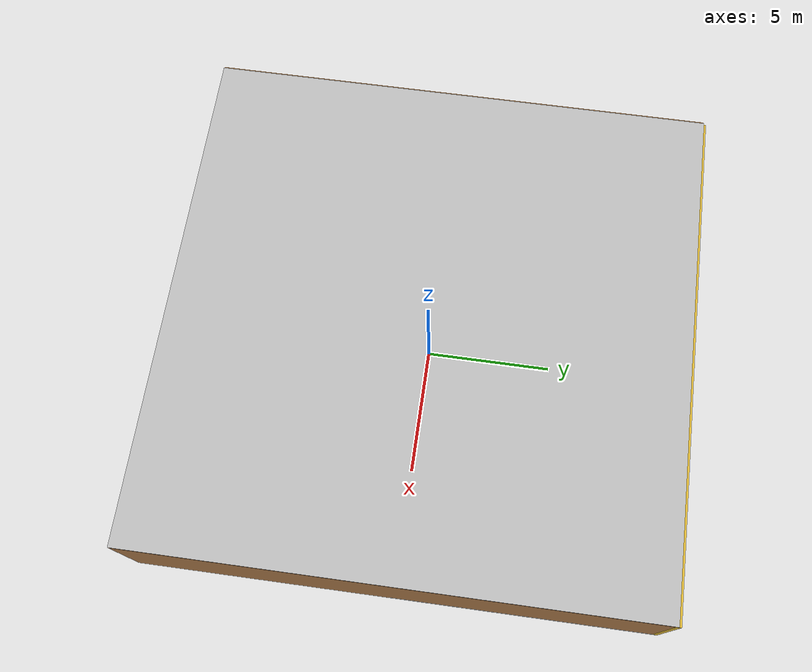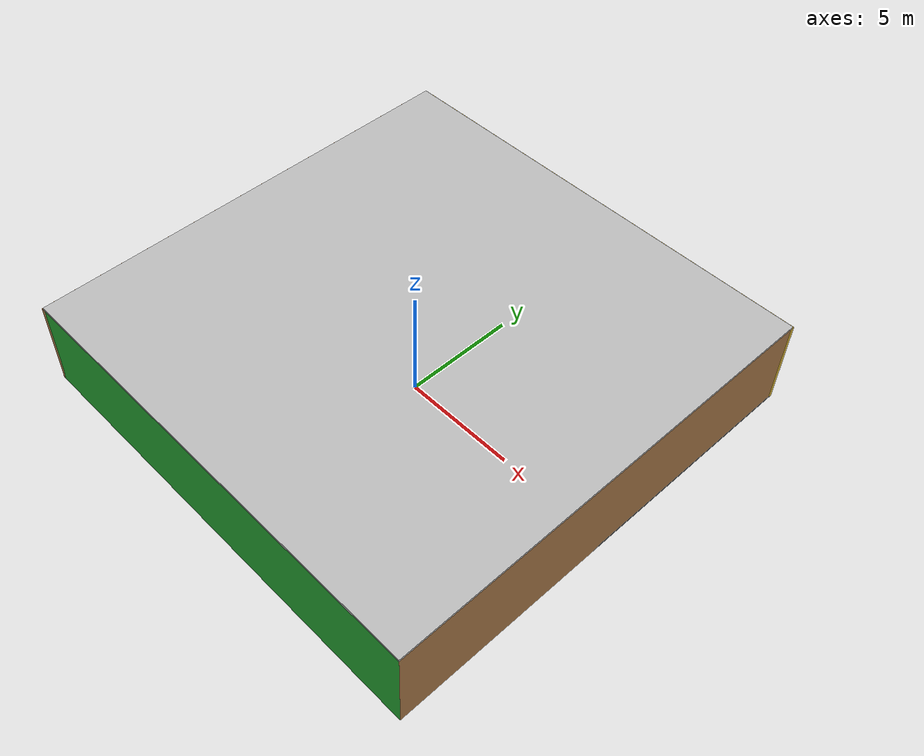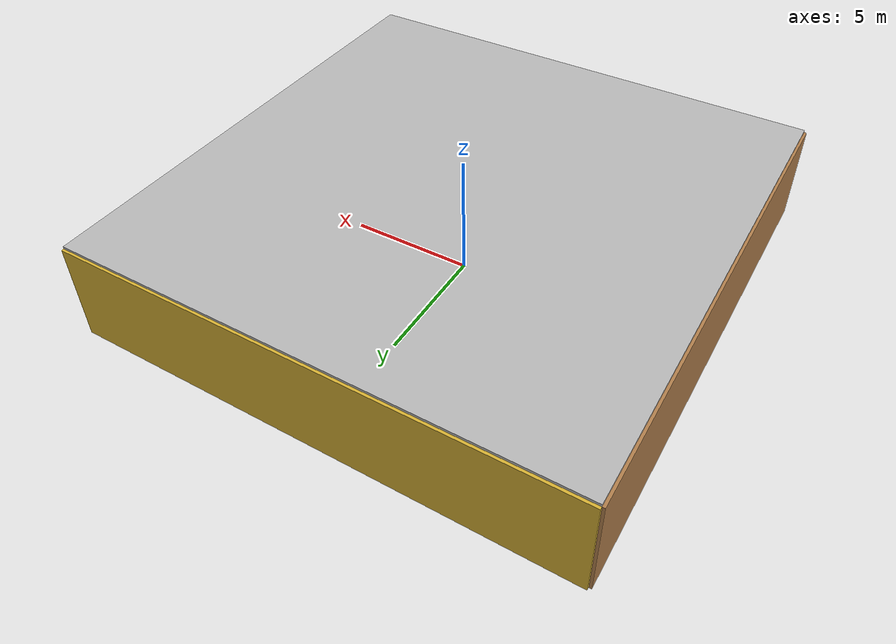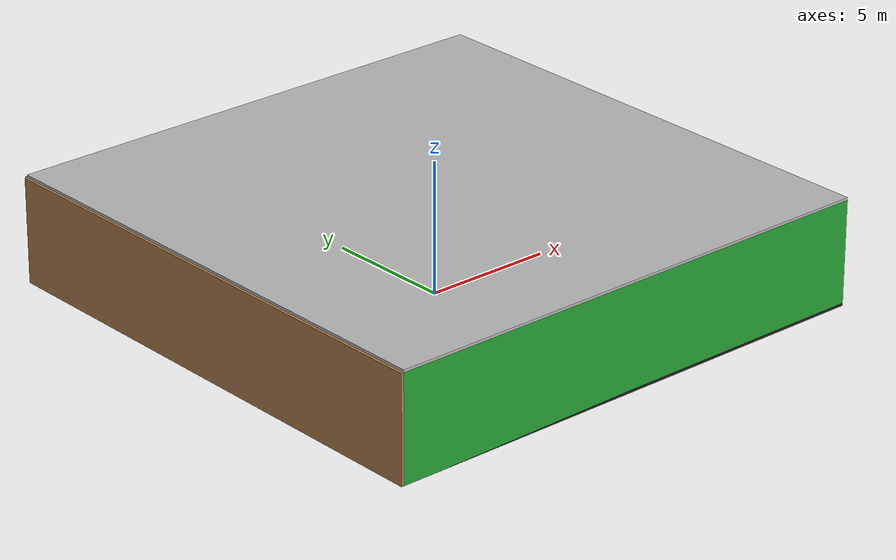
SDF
<sdf version="1.4">
 <world name="default">
  <physics type="ode">
   <max_step_size>0.001</max_step_size>
   <real_time_factor>1</real_time_factor>
   <real_time_update_rate>1000</real_time_update_rate>
   <gravity>0 0 -9.8</gravity>
  </physics>
  <scene><ambient>0.4 0.4 0.4 1</ambient><background>0.7 0.7 0.7 1</background><shadows>1</shadows></scene>
  <model name="Surrounding">
   <static>1</static>
   <link name="Ceiling">
    <collision name="Ceiling_Collision"><geometry><box><size>20 20 0.1</size></box></geometry></collision>
    <visual name="Ceiling_Visual">
     <geometry><box><size>20 20 0.1</size></box></geometry>
     <material>
      <script><uri>file://media/materials/scripts/gazebo.material</uri><name>Gazebo/PioneerBody</name></script>
     </material>
    </visual>
    <pose>0 0 4.05 0 0 0</pose>
   </link>
   <link name="Wall_South">
    <collision name="Wall_South_Collision">
     <geometry><box><size>20 0 4</size></box></geometry>
     <pose>0 0 2 0 -0 0</pose>
    </collision>
    <visual name="Wall_South_Visual">
     <pose>0 0 2 0 -0 0</pose>
     <geometry><box><size>20 0 4</size></box></geometry>
     <material>
      <script><uri>file://media/materials/scripts/gazebo.material</uri><name>Gazebo/GreenGlow</name></script>
     </material>
    </visual>
    <velocity_decay><linear>0</linear><angular>0</angular></velocity_decay>
    <pose>0 -10 0 0 -0 0</pose>
   </link>
   <link name="Wall_East">
    <collision name="Wall_21_Collision">
     <geometry><box><size>20 0 4</size></box></geometry>
     <pose>0 0 2 0 -0 0</pose>
    </collision>
    <visual name="Wall_21_Visual">
     <pose>0 0 2 0 -0 0</pose>
     <geometry><box><size>20 0 4</size></box></geometry>
     <material>
      <script><uri>file://media/materials/scripts/gazebo.material</uri><name>Gazebo/Wood</name></script>
     </material>
    </visual>
    <velocity_decay><linear>0</linear><angular>0</angular></velocity_decay>
    <pose>10 0 0 0 -0 1.5708</pose>
   </link>
   <link name="Wall_North">
    <collision name="Wall_22_Collision">
     <geometry><box><size>20 0.2 4</size></box></geometry>
     <pose>0 0 2 0 -0 0</pose>
    </collision>
    <visual name="Wall_22_Visual">
     <pose>0 0 2 0 -0 0</pose>
     <geometry><box><size>20 0.2 4</size></box></geometry>
     <material>
      <script><uri>file://media/materials/scripts/gazebo.material</uri><name>Gazebo/Gold</name></script>
     </material>
    </visual>
    <velocity_decay><linear>0</linear><angular>0</angular></velocity_decay>
    <pose>0 10 0 0 -0 0</pose>
   </link>
   <link name="Wall_West">
    <collision name="Wall_23_Collision">
     <geometry><box><size>20 0.2 4</size></box></geometry>
     <pose>0 0 2 0 -0 0</pose>
    </collision>
    <visual name="Wall_23_Visual">
     <pose>0 0 2 0 -0 0</pose>
     <geometry><box><size>20 0.2 4</size></box></geometry>
     <material>
      <script><uri>file://media/materials/scripts/gazebo.material</uri><name>Gazebo/WoodFloor</name></script>
     </material>
    </visual>
    <velocity_decay><linear>0</linear><angular>0</angular></velocity_decay>
    <pose>-10 0 0 0 0 -1.5708</pose>
   </link>
   <link name="Ground_link">
    <collision name="collision">
     <pose>0 0 .05 0 -0 0</pose>
     <geometry><box><size>20 20 0.1</size></box></geometry>
    </collision>
    <visual name="visual">
     <pose>0 0 .05 0 -0 0</pose>
     <geometry><box><size>20 20 0.1</size></box></geometry>
     <material>
      <script><uri>file://media/materials/scripts/gazebo.material</uri><name>Gazebo/FlatBlack</name></script>
     </material>
    </visual>
   </link>
   <static>1</static>
  </model>
  <spherical_coordinates>
   <surface_model>EARTH_WGS84</surface_model>
   <latitude_deg>0</latitude_deg>
   <longitude_deg>0</longitude_deg>
   <elevation>0</elevation>
   <heading_deg>0</heading_deg>
  </spherical_coordinates>
  <light name="lightball_0" type="diffuse">
   <diffuse>0.8 0.8 0.8 1</diffuse>
   <specular>0.2 0.2 0.2 1</specular>
   <attenuation>
    <range>100</range>
    <constant>0.7</constant>
    <linear>0.01</linear>
    <quadratic>0.001</quadratic>
   </attenuation>
   <direction>-0.5 0.1 -0.9</direction>
   <pose>-6.16420361409 -7.71073086744 2.76545476499 0 0 0</pose>
  </light>
  <light name="lightball_1" type="diffuse">
   <diffuse>0.8 0.8 0.8 1</diffuse>
   <specular>0.2 0.2 0.2 1</specular>
   <attenuation>
    <range>100</range>
    <constant>0.7</constant>
    <linear>0.01</linear>
    <quadratic>0.001</quadratic>
   </attenuation>
   <direction>-0.5 0.1 -0.9</direction>
   <pose>-7.45903674343 0.763800618137 3.03914215844 0 0 0</pose>
  </light>
  <light name="lightball_2" type="diffuse">
   <diffuse>0.8 0.8 0.8 1</diffuse>
   <specular>0.2 0.2 0.2 1</specular>
   <attenuation>
    <range>100</range>
    <constant>0.7</constant>
    <linear>0.01</linear>
    <quadratic>0.001</quadratic>
   </attenuation>
   <direction>-0.5 0.1 -0.9</direction>
   <pose>-7.31878498913 -9.75349066168 0.901825708938 0 0 0</pose>
  </light>
  <light name="lightball_3" type="diffuse">
   <diffuse>0.8 0.8 0.8 1</diffuse>
   <specular>0.2 0.2 0.2 1</specular>
   <attenuation>
    <range>100</range>
    <constant>0.7</constant>
    <linear>0.01</linear>
    <quadratic>0.001</quadratic>
   </attenuation>
   <direction>-0.5 0.1 -0.9</direction>
   <pose>-2.14652138479 -3.8483305086 2.05117636325 0 0 0</pose>
  </light>
  <light name="lightball_4" type="diffuse">
   <diffuse>0.8 0.8 0.8 1</diffuse>
   <specular>0.2 0.2 0.2 1</specular>
   <attenuation>
    <range>100</range>
    <constant>0.7</constant>
    <linear>0.01</linear>
    <quadratic>0.001</quadratic>
   </attenuation>
   <direction>-0.5 0.1 -0.9</direction>
   <pose>-7.27053627324 0.781822855813 1.33387050482 0 0 0</pose>
  </light>
  <light name="lightball_5" type="diffuse">
   <diffuse>0.8 0.8 0.8 1</diffuse>
   <specular>0.2 0.2 0.2 1</specular>
   <attenuation>
    <range>100</range>
    <constant>0.7</constant>
    <linear>0.01</linear>
    <quadratic>0.001</quadratic>
   </attenuation>
   <direction>-0.5 0.1 -0.9</direction>
   <pose>5.29582569879 9.66402424412 2.24079629587 0 0 0</pose>
  </light>
  <light name="lightball_6" type="diffuse">
   <diffuse>0.8 0.8 0.8 1</diffuse>
   <specular>0.2 0.2 0.2 1</specular>
   <attenuation>
    <range>100</range>
    <constant>0.7</constant>
    <linear>0.01</linear>
    <quadratic>0.001</quadratic>
   </attenuation>
   <direction>-0.5 0.1 -0.9</direction>
   <pose>-6.43431082046 5.70055898425 1.31828278866 0 0 0</pose>
  </light>
  <light name="lightball_7" type="diffuse">
   <diffuse>0.8 0.8 0.8 1</diffuse>
   <specular>0.2 0.2 0.2 1</specular>
   <attenuation>
    <range>100</range>
    <constant>0.7</constant>
    <linear>0.01</linear>
    <quadratic>0.001</quadratic>
   </attenuation>
   <direction>-0.5 0.1 -0.9</direction>
   <pose>-0.773838763643 -6.46472856565 1.79346347208 0 0 0</pose>
  </light>
  <light name="lightball_8" type="diffuse">
   <diffuse>0.8 0.8 0.8 1</diffuse>
   <specular>0.2 0.2 0.2 1</specular>
   <attenuation>
    <range>100</range>
    <constant>0.7</constant>
    <linear>0.01</linear>
    <quadratic>0.001</quadratic>
   </attenuation>
   <direction>-0.5 0.1 -0.9</direction>
   <pose>-7.70030108176 -6.60433235698 3.60634062824 0 0 0</pose>
  </light>
  <light name="lightball_9" type="diffuse">
   <diffuse>0.8 0.8 0.8 1</diffuse>
   <specular>0.2 0.2 0.2 1</specular>
   <attenuation>
    <range>100</range>
    <constant>0.7</constant>
    <linear>0.01</linear>
    <quadratic>0.001</quadratic>
   </attenuation>
   <direction>-0.5 0.1 -0.9</direction>
   <pose>5.00776364689 -6.46410978115 3.82210871848 0 0 0</pose>
  </light>
  <light name="lightball_10" type="diffuse">
   <diffuse>0.8 0.8 0.8 1</diffuse>
   <specular>0.2 0.2 0.2 1</specular>
   <attenuation>
    <range>100</range>
    <constant>0.7</constant>
    <linear>0.01</linear>
    <quadratic>0.001</quadratic>
   </attenuation>
   <direction>-0.5 0.1 -0.9</direction>
   <pose>-6.80054311496 -5.33611543921 1.93366703105 0 0 0</pose>
  </light>
  <light name="lightball_11" type="diffuse">
   <diffuse>0.8 0.8 0.8 1</diffuse>
   <specular>0.2 0.2 0.2 1</specular>
   <attenuation>
    <range>100</range>
    <constant>0.7</constant>
    <linear>0.01</linear>
    <quadratic>0.001</quadratic>
   </attenuation>
   <direction>-0.5 0.1 -0.9</direction>
   <pose>-0.155394269766 2.72551920815 3.65563776607 0 0 0</pose>
  </light>
  <light name="lightball_12" type="diffuse">
   <diffuse>0.8 0.8 0.8 1</diffuse>
   <specular>0.2 0.2 0.2 1</specular>
   <attenuation>
    <range>100</range>
    <constant>0.7</constant>
    <linear>0.01</linear>
    <quadratic>0.001</quadratic>
   </attenuation>
   <direction>-0.5 0.1 -0.9</direction>
   <pose>-7.25516125674 -3.63651935084 3.0038589 0 0 0</pose>
  </light>
  <include>
   <uri>model://robocup_3Dsim_goal</uri>
   <pose>-7.39606857068 -6.37208836632 0 0 0 0.211565455673</pose>
  </include>
  <include>
   <uri>model://robocup_3Dsim_goal</uri>
   <pose>-6.50781400813 0.402374509224 0 0 0 2.54422035585</pose>
  </include>
  <include>
   <uri>model://robocup_3Dsim_goal</uri>
   <pose>-5.32866605346 -1.97769654895 0 0 0 0.939201585617</pose>
  </include>
  <include><uri>model://cabinet</uri><pose>-5.00707980221 8.63238853787 0 0 0 2.18896101349</pose></include>
  <include>
   <uri>model://robocup_3Dsim_goal</uri>
   <pose>-0.334665020483 3.34864959529 0 0 0 1.6589148749</pose>
  </include>
  <include>
   <uri>model://robocup_3Dsim_goal</uri>
   <pose>0.75172932891 6.66867061513 0 0 0 0.506567669646</pose>
  </include>
  <include>
   <uri>model://textured_shapes</uri>
   <pose>5.29175797215 -6.59805366028 0 0 0 1.56625792907</pose>
  </include>
  <include>
   <uri>model://robocup_3Dsim_goal</uri>
   <pose>4.04132861602 -1.89281499179 0 0 0 0.89121928244</pose>
  </include>
  <include><uri>model://cabinet</uri><pose>4.30497573793 8.08795356098 0 0 0 1.55701821426</pose></include>
 </world>
</sdf>

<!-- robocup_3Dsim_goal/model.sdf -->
<sdf version="1.5">
  <model name="robocup_3d_goal">
    <static>true</static>
    <link name="left_post">
      <pose>0 1.05 0.45 0 0 0</pose>
      <collision name="collision">
        <geometry>
          <cylinder>
            <radius>0.05</radius>
            <length>0.9</length>
          </cylinder>
        </geometry>
      </collision>
      <visual name="visual">
        <geometry>
          <cylinder>
            <radius>0.05</radius>
            <length>0.9</length>
          </cylinder>
        </geometry>
        <material>
          <script>
            <uri>file://media/materials/scripts/gazebo.material</uri>
            <name>Gazebo/ZincYellow</name>
          </script>
        </material>
      </visual>
    </link>
    <link name="left_support_horiz_lower">
      <pose>0.30 1.05 0.01 0 0 0</pose>
      <collision name="collision">
        <geometry>
          <box>
            <size>0.50 0.02 0.02</size>
          </box>
        </geometry>
      </collision>
      <visual name="visual">
        <geometry>
          <box>
            <size>0.50 0.02 0.02</size>
          </box>
        </geometry>
        <material>
          <script>
            <uri>file://media/materials/scripts/gazebo.material</uri>
            <name>Gazebo/White</name>
          </script>
        </material>
      </visual>
    </link>
    <link name="left_support_horiz_upper">
      <pose>0.30 1.05 0.79 0 0 0</pose>
      <collision name="collision">
        <geometry>
          <box>
            <size>0.50 0.02 0.02</size>
          </box>
        </geometry>
      </collision>
      <visual name="visual">
        <geometry>
          <box>
            <size>0.50 0.02 0.02</size>
          </box>
        </geometry>
        <material>
          <script>
            <uri>file://media/materials/scripts/gazebo.material</uri>
            <name>Gazebo/White</name>
          </script>
        </material>
      </visual>
    </link>
    <link name="left_support_vertical">
      <pose>0.56 1.05 0.4 0 1.5708 0</pose>
      <collision name="collision">
        <geometry>
          <box>
            <size>0.80 0.02 0.02</size>
          </box>
        </geometry>
      </collision>
      <visual name="visual">
        <geometry>
          <box>
            <size>0.80 0.02 0.02</size>
          </box>
        </geometry>
        <material>
          <script>
            <uri>file://media/materials/scripts/gazebo.material</uri>
            <name>Gazebo/White</name>
          </script>
        </material>
      </visual>
    </link>
    <link name="right_support_horiz_lower">
      <pose>0.30 -1.05 0.01 0 0 0</pose>
      <collision name="collision">
        <geometry>
          <box>
            <size>0.50 0.02 0.02</size>
          </box>
        </geometry>
      </collision>
      <visual name="visual">
        <geometry>
          <box>
            <size>0.50 0.02 0.02</size>
          </box>
        </geometry>
        <material>
          <script>
            <uri>file://media/materials/scripts/gazebo.material</uri>
            <name>Gazebo/White</name>
          </script>
        </material>
      </visual>
    </link>
    <link name="right_support_horiz_upper">
      <pose>0.30 -1.05 0.79 0 0 0</pose>
      <collision name="collision">
        <geometry>
          <box>
            <size>0.50 0.02 0.02</size>
          </box>
        </geometry>
      </collision>
      <visual name="visual">
        <geometry>
          <box>
            <size>0.50 0.02 0.02</size>
          </box>
        </geometry>
        <material>
          <script>
            <uri>file://media/materials/scripts/gazebo.material</uri>
            <name>Gazebo/White</name>
          </script>
        </material>
      </visual>
    </link>
    <link name="right_support_vertical">
      <pose>0.56 -1.05 0.4 0 1.5708 0</pose>
      <collision name="collision">
        <geometry>
          <box>
            <size>0.80 0.02 0.02</size>
          </box>
        </geometry>
      </collision>
      <visual name="visual">
        <geometry>
          <box>
            <size>0.80 0.02 0.02</size>
          </box>
        </geometry>
        <material>
          <script>
            <uri>file://media/materials/scripts/gazebo.material</uri>
            <name>Gazebo/White</name>
          </script>
        </material>
      </visual>
    </link>
    <link name="center_support_horiz_lower">
      <pose>0.56 0 0.01 0 1.5708 0</pose>
      <collision name="collision">
        <geometry>
          <box>
            <size>0.02 2.08 0.02</size>
          </box>
        </geometry>
      </collision>
      <visual name="visual">
        <geometry>
          <box>
            <size>0.02 2.08 0.02</size>
          </box>
        </geometry>
        <material>
          <script>
            <uri>file://media/materials/scripts/gazebo.material</uri>
            <name>Gazebo/White</name>
          </script>
        </material>
      </visual>
    </link>
    <link name="center_support_horiz_upper">
      <pose>0.56 0 0.79 0 1.5708 0</pose>
      <collision name="collision">
        <geometry>
          <box>
            <size>0.02 2.08 0.02</size>
          </box>
        </geometry>
      </collision>
      <visual name="visual">
        <geometry>
          <box>
            <size>0.02 2.08 0.02</size>
          </box>
        </geometry>
        <material>
          <script>
            <uri>file://media/materials/scripts/gazebo.material</uri>
            <name>Gazebo/White</name>
          </script>
        </material>
      </visual>
    </link>
    <link name="right_post">
      <pose>0 -1.05 0.45 0 0 0</pose>
      <collision name="collision">
        <geometry>
          <cylinder>
            <radius>0.05</radius>
            <length>0.9</length>
          </cylinder>
        </geometry>
      </collision>
      <visual name="visual">
        <geometry>
          <cylinder>
            <radius>0.05</radius>
            <length>0.9</length>
          </cylinder>
        </geometry>
        <material>
          <script>
            <uri>file://media/materials/scripts/gazebo.material</uri>
            <name>Gazebo/ZincYellow</name>
          </script>
        </material>
      </visual>
    </link>
    <link name="crossbar">
      <pose>0 0 0.85 1.57 1.57 0</pose>
      <collision name="collision">
        <geometry>
          <cylinder>
            <radius>0.05</radius>
            <length>2.0</length>
          </cylinder>
        </geometry>
      </collision>
      <visual name="visual">
        <geometry>
          <cylinder>
            <radius>0.05</radius>
            <length>2.0</length>
          </cylinder>
        </geometry>
        <material>
          <script>
            <uri>file://media/materials/scripts/gazebo.material</uri>
            <name>Gazebo/ZincYellow</name>
          </script>
        </material>
      </visual>
    </link>
    <link name="center_net">
      <pose>0.56 0 0.40 0 0 0</pose>
      <collision name="collision">
        <geometry>
          <box>
            <size>0.01 2.1 0.80</size>
          </box>
        </geometry>
      </collision>
      <visual name="visual">
        <geometry>
          <box>
            <size>0.01 2.1 0.80</size>
          </box>
        </geometry>
        <material>
          <script>
            <uri>model://../model_source/models/robocup09_spl_field/materials/scripts/</uri>
            <uri>model://../model_source/models/robocup09_spl_field/materials/textures/</uri>
            <name>RoboCup/Net</name>
          </script>
        </material>
      </visual>
    </link>
    <link name="left_net">
      <pose>0.30 1.05 0.40 0 0 0</pose>
      <collision name="collision">
        <geometry>
          <box>
            <size>0.50 0.01 0.76</size>
          </box>
        </geometry>
      </collision>
      <visual name="visual">
        <geometry>
          <box>
            <size>0.50 0.01 0.76</size>
          </box>
        </geometry>
        <material>
          <script>
            <uri>model://../model_source/models/robocup09_spl_field/materials/scripts/</uri>
            <uri>model://../model_source/models/robocup09_spl_field/materials/textures/</uri>
            <name>RoboCup/Net</name>
          </script>
        </material>
      </visual>
    </link>
    <link name="right_net">
      <pose>0.30 -1.05 0.40 0 0 0</pose>
      <collision name="collision">
        <geometry>
          <box>
            <size>0.50 0.01 0.76</size>
          </box>
        </geometry>
      </collision>
      <visual name="visual">
        <geometry>
          <box>
            <size>0.50 0.01 0.76</size>
          </box>
        </geometry>
        <material>
          <script>
            <uri>model://../model_source/models/robocup09_spl_field/materials/scripts/</uri>
            <uri>model://../model_source/models/robocup09_spl_field/materials/textures/</uri>
            <name>RoboCup/Net</name>
          </script>
        </material>
      </visual>
    </link>
  </model>
</sdf>

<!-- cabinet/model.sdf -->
<sdf version="1.5">
  <model name="cabinet">
    <static>true</static>
    <link name="cabinet_bottom_plate">
      <inertial>
        <pose>0 0 -1 0 0 0</pose>
        <inertia>
          <ixx>2.050000</ixx>
          <ixy>0</ixy>
          <ixz>0</ixz>
          <iyy>2.050000</iyy>
          <iyz>0</iyz>
          <izz>2.050000</izz>
        </inertia>
        <mass>25.000000</mass>
      </inertial>
      <collision name="cabinet_bottom_plate_geom">
        <pose>0 0 0.010000 0 0 0</pose>
        <geometry>
          <box>
            <size>0.450000 0.450000 0.020000</size>
          </box>
        </geometry>
      </collision>
      <visual name="cabinet_bottom_plate_geom_visual">
        <pose>0 0 0.010000 0 0 0</pose>
        <geometry>
          <box>
            <size>0.450000 0.450000 0.020000</size>
          </box>
        </geometry>
        <material>
          <script>
            <uri>model://media/materials/scripts/gazebo.material</uri>
            <name>Gazebo/Wood</name>
          </script>
        </material>
      </visual>
      <collision name="cabinet_bottom_plate_geom_cabinet_back_plate">
        <pose>0.235000 0 0.510000 0 0 0</pose>
        <geometry>
          <box>
            <size>0.020000 0.450000 1.020000</size>
          </box>
        </geometry>
      </collision>
      <visual name="cabinet_bottom_plate_geom_cabinet_back_plate_visual">
        <pose>0.235000 0 0.510000 0 0 0</pose>
        <geometry>
          <box>
            <size>0.020000 0.450000 1.020000</size>
          </box>
        </geometry>
        <material>
          <script>
            <uri>model://media/materials/scripts/gazebo.material</uri>
            <name>Gazebo/Wood</name>
          </script>
        </material>
      </visual>
      <collision name="cabinet_bottom_plate_geom_cabinet_left_plate">
        <pose>0 0.235000 0.510000 0 0 0</pose>
        <geometry>
          <box>
            <size>0.450000 0.020000 1.020000</size>
          </box>
        </geometry>
      </collision>
      <visual name="cabinet_bottom_plate_geom_cabinet_left_plate_visual">
        <pose>0 0.235000 0.510000 0 0 0</pose>
        <geometry>
          <box>
            <size>0.450000 0.020000 1.020000</size>
          </box>
        </geometry>
        <material>
          <script>
            <uri>model://media/materials/scripts/gazebo.material</uri>
            <name>Gazebo/Wood</name>
          </script>
        </material>
      </visual>
      <collision name="cabinet_bottom_plate_geom_cabinet_middle_plate">
        <pose>0 0 0.510000 0 0 0</pose>
        <geometry>
          <box>
            <size>0.450000 0.450000 0.020000</size>
          </box>
        </geometry>
      </collision>
      <visual name="cabinet_bottom_plate_geom_cabinet_middle_plate_visual">
        <pose>0 0 0.510000 0 0 0</pose>
        <geometry>
          <box>
            <size>0.450000 0.450000 0.020000</size>
          </box>
        </geometry>
        <material>
          <script>
            <uri>model://media/materials/scripts/gazebo.material</uri>
            <name>Gazebo/Wood</name>
          </script>
        </material>
      </visual>
      <collision name="cabinet_bottom_plate_geom_cabinet_right_plate">
        <pose>0 -0.235000 0.510000 0 0 0</pose>
        <geometry>
          <box>
            <size>0.450000 0.020000 1.020000</size>
          </box>
        </geometry>
      </collision>
      <visual name="cabinet_bottom_plate_geom_cabinet_right_plate_visual">
        <pose>0 -0.235000 0.510000 0 0 0</pose>
        <geometry>
          <box>
            <size>0.450000 0.020000 1.020000</size>
          </box>
        </geometry>
        <material>
          <script>
            <uri>model://media/materials/scripts/gazebo.material</uri>
            <name>Gazebo/Wood</name>
          </script>
        </material>
      </visual>
      <collision name="cabinet_bottom_plate_geom_cabinet_top_plate">
        <pose>0 0 1.010000 0 0 0</pose>
        <geometry>
          <box>
            <size>0.450000 0.450000 0.020000</size>
          </box>
        </geometry>
      </collision>
      <visual name="cabinet_bottom_plate_geom_cabinet_top_plate_visual">
        <pose>0 0 1.010000 0 0 0</pose>
        <geometry>
          <box>
            <size>0.450000 0.450000 0.020000</size>
          </box>
        </geometry>
        <material>
          <script>
            <uri>model://media/materials/scripts/gazebo.material</uri>
            <name>Gazebo/Wood</name>
          </script>
        </material>
      </visual>
    </link>
  </model>
</sdf>

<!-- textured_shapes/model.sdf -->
<sdf version="1.6">
  <model name="textured_shapes">
    <pose>0 0 0.5 0 0 0</pose>
    <link name="box">
      <pose>0 -1.5 0 0 0 0</pose>
      <collision name="collision">
        <geometry>
          <box>
            <size>1 1 1</size>
          </box>
        </geometry>
      </collision>
      <visual name="visual">
        <geometry>
          <box>
            <size>1 1 1</size>
          </box>
        </geometry>
        <material>
          <script>
            <uri>model://../model_source/models/textured_shapes/materials/scripts</uri>
            <uri>model://../model_source/models/textured_shapes/materials/textures</uri>
            <name>TexturedShape/Squares</name>
          </script>
        </material>
      </visual>
    </link>
    <link name="sphere">
      <collision name="collision">
        <geometry>
          <sphere>
            <radius>0.5</radius>
          </sphere>
        </geometry>
      </collision>
      <visual name="visual">
        <geometry>
          <sphere>
            <radius>0.5</radius>
          </sphere>
        </geometry>
        <material>
          <script>
            <uri>model://../model_source/models/textured_shapes/materials/scripts</uri>
            <uri>model://../model_source/models/textured_shapes/materials/textures</uri>
            <name>TexturedShape/Squares</name>
          </script>
        </material>
      </visual>
    </link>
    <link name="cylinder">
      <pose>0 1.5 0 0 0 0</pose>
      <collision name="collision">
        <geometry>
          <cylinder>
            <radius>0.5</radius>
            <length>1</length>
          </cylinder>
        </geometry>
      </collision>
      <visual name="visual">
        <geometry>
          <cylinder>
            <radius>0.5</radius>
            <length>1</length>
          </cylinder>
        </geometry>
        <material>
          <script>
            <uri>model://../model_source/models/textured_shapes/materials/scripts</uri>
            <uri>model://../model_source/models/textured_shapes/materials/textures</uri>
            <name>TexturedShape/Squares</name>
          </script>
        </material>
      </visual>
    </link>
  </model>
</sdf>
